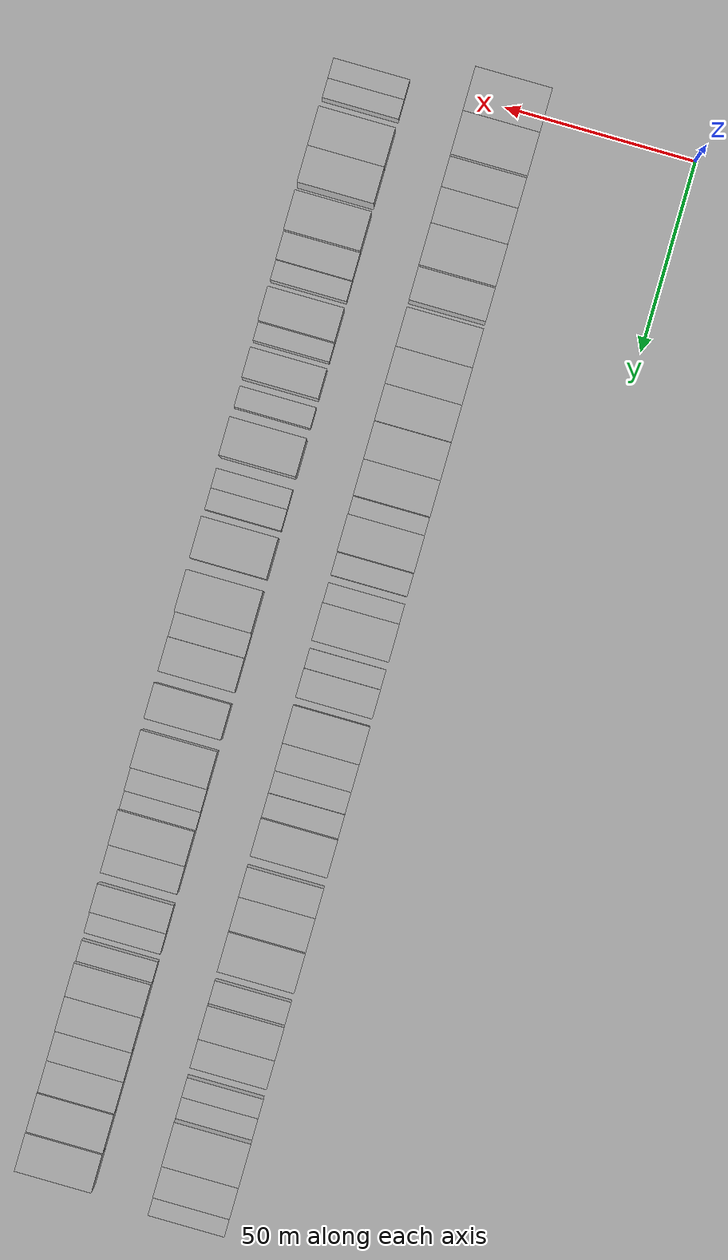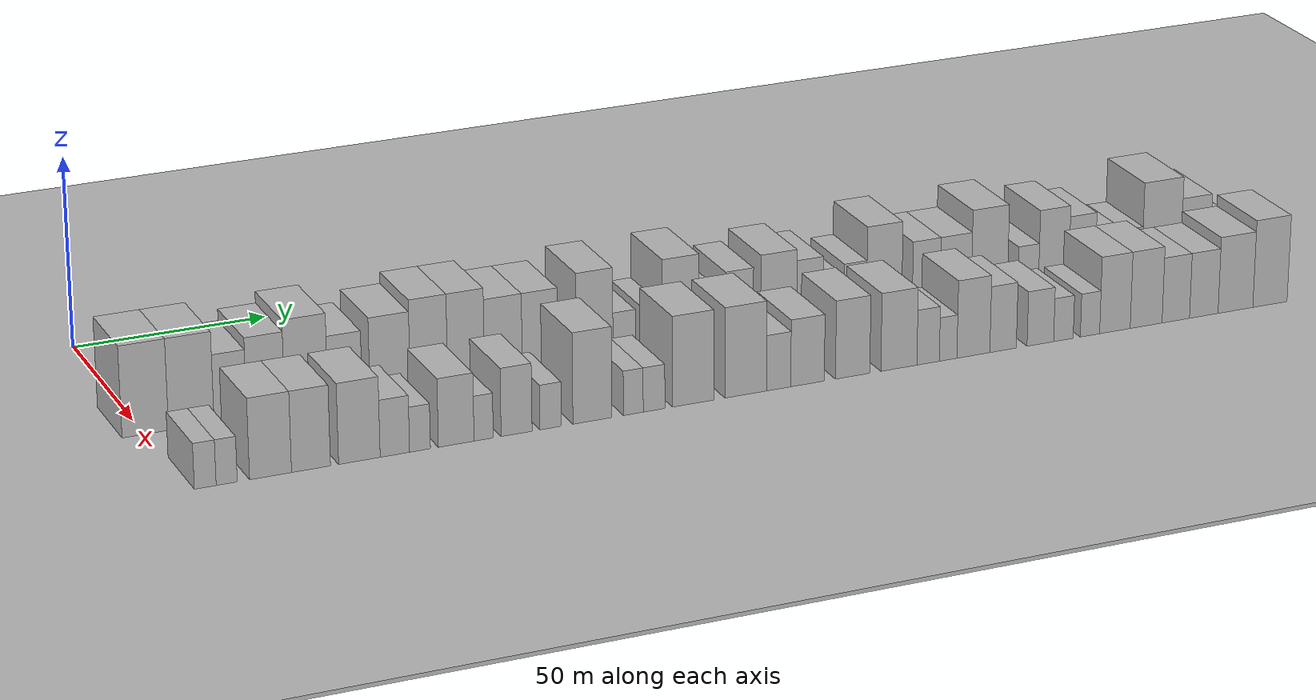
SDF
<sdf version="1.6">
 <world name="default">
  <include><name>ground_plane_1</name><uri>model://HANNAS_ground_plane</uri></include>
  <include>
   <name>ground_plane_2</name>
   <uri>model://HANNAS_ground_plane</uri>
   <pose>100 0 0  0 0 0</pose>
  </include>
  <model name="building_32">
   <static>1</static>
   <pose>50.0000 -0.0336 0 0.000000 0.000000 0.000000</pose>
   <link name="link">
    <pose>0 0 12.00 0 0 0</pose>
    <collision name="collision"><geometry><box><size>20.0000 11.4835 24.0000</size></box></geometry></collision>
    <visual name="visual">
     <cast_shadows>0</cast_shadows>
     <geometry><box><size>20.0000 11.4835 24.0000</size></box></geometry>
     <material>
      <script>
       <uri>model://HANNAS_wall/materials/scripts</uri>
       <uri>model://HANNAS_wall/materials/textures</uri>
       <name>vrc/HANNAS_wall</name>
      </script>
     </material>
    </visual>
   </link>
  </model>
  <model name="building_33">
   <static>1</static>
   <pose>50.0000 11.3672 0 0.000000 0.000000 0.000000</pose>
   <link name="link">
    <pose>0 0 12.00 0 0 0</pose>
    <collision name="collision"><geometry><box><size>20.0000 11.3181 24.0000</size></box></geometry></collision>
    <visual name="visual">
     <cast_shadows>0</cast_shadows>
     <geometry><box><size>20.0000 11.3181 24.0000</size></box></geometry>
     <material>
      <script>
       <uri>model://HANNAS_wall/materials/scripts</uri>
       <uri>model://HANNAS_wall/materials/textures</uri>
       <name>vrc/HANNAS_wall</name>
      </script>
     </material>
    </visual>
   </link>
  </model>
  <model name="building_34">
   <static>1</static>
   <pose>50.0000 21.1201 0 0.000000 0.000000 0.000000</pose>
   <link name="link">
    <pose>0 0 9.00 0 0 0</pose>
    <collision name="collision"><geometry><box><size>20.0000 8.1878 18.0000</size></box></geometry></collision>
    <visual name="visual">
     <cast_shadows>0</cast_shadows>
     <geometry><box><size>20.0000 8.1878 18.0000</size></box></geometry>
     <material>
      <script>
       <uri>model://HANNAS_wall/materials/scripts</uri>
       <uri>model://HANNAS_wall/materials/textures</uri>
       <name>vrc/HANNAS_wall</name>
      </script>
     </material>
    </visual>
   </link>
  </model>
  <model name="building_35">
   <static>1</static>
   <pose>50.0000 30.0102 0 0.000000 0.000000 0.000000</pose>
   <link name="link">
    <pose>0 0 10.50 0 0 0</pose>
    <collision name="collision"><geometry><box><size>20.0000 9.5924 21.0000</size></box></geometry></collision>
    <visual name="visual">
     <cast_shadows>0</cast_shadows>
     <geometry><box><size>20.0000 9.5924 21.0000</size></box></geometry>
     <material>
      <script>
       <uri>model://HANNAS_wall/materials/scripts</uri>
       <uri>model://HANNAS_wall/materials/textures</uri>
       <name>vrc/HANNAS_wall</name>
      </script>
     </material>
    </visual>
   </link>
  </model>
  <model name="building_36">
   <static>1</static>
   <pose>50.0000 40.2652 0 0.000000 0.000000 0.000000</pose>
   <link name="link">
    <pose>0 0 12.00 0 0 0</pose>
    <collision name="collision"><geometry><box><size>20.0000 10.9175 24.0000</size></box></geometry></collision>
    <visual name="visual">
     <cast_shadows>0</cast_shadows>
     <geometry><box><size>20.0000 10.9175 24.0000</size></box></geometry>
     <material>
      <script>
       <uri>model://HANNAS_wall/materials/scripts</uri>
       <uri>model://HANNAS_wall/materials/textures</uri>
       <name>vrc/HANNAS_wall</name>
      </script>
     </material>
    </visual>
   </link>
  </model>
  <model name="building_37">
   <static>1</static>
   <pose>50.0000 50.0913 0 0.000000 0.000000 0.000000</pose>
   <link name="link">
    <pose>0 0 9.00 0 0 0</pose>
    <collision name="collision"><geometry><box><size>20.0000 8.7346 18.0000</size></box></geometry></collision>
    <visual name="visual">
     <cast_shadows>0</cast_shadows>
     <geometry><box><size>20.0000 8.7346 18.0000</size></box></geometry>
     <material>
      <script>
       <uri>model://HANNAS_wall/materials/scripts</uri>
       <uri>model://HANNAS_wall/materials/textures</uri>
       <name>vrc/HANNAS_wall</name>
      </script>
     </material>
    </visual>
   </link>
  </model>
  <model name="building_38">
   <static>1</static>
   <pose>50.0000 61.6384 0 0.000000 0.000000 0.000000</pose>
   <link name="link">
    <pose>0 0 10.50 0 0 0</pose>
    <collision name="collision"><geometry><box><size>20.0000 10.3596 21.0000</size></box></geometry></collision>
    <visual name="visual">
     <cast_shadows>0</cast_shadows>
     <geometry><box><size>20.0000 10.3596 21.0000</size></box></geometry>
     <material>
      <script>
       <uri>model://HANNAS_wall/materials/scripts</uri>
       <uri>model://HANNAS_wall/materials/textures</uri>
       <name>vrc/HANNAS_wall</name>
      </script>
     </material>
    </visual>
   </link>
  </model>
  <model name="building_39">
   <static>1</static>
   <pose>50.0000 71.6569 0 0.000000 0.000000 0.000000</pose>
   <link name="link">
    <pose>0 0 12.00 0 0 0</pose>
    <collision name="collision"><geometry><box><size>20.0000 9.6773 24.0000</size></box></geometry></collision>
    <visual name="visual">
     <cast_shadows>0</cast_shadows>
     <geometry><box><size>20.0000 9.6773 24.0000</size></box></geometry>
     <material>
      <script>
       <uri>model://HANNAS_wall/materials/scripts</uri>
       <uri>model://HANNAS_wall/materials/textures</uri>
       <name>vrc/HANNAS_wall</name>
      </script>
     </material>
    </visual>
   </link>
  </model>
  <model name="building_40">
   <static>1</static>
   <pose>50.0000 81.2991 0 0.000000 0.000000 0.000000</pose>
   <link name="link">
    <pose>0 0 12.00 0 0 0</pose>
    <collision name="collision"><geometry><box><size>20.0000 9.6071 24.0000</size></box></geometry></collision>
    <visual name="visual">
     <cast_shadows>0</cast_shadows>
     <geometry><box><size>20.0000 9.6071 24.0000</size></box></geometry>
     <material>
      <script>
       <uri>model://HANNAS_wall/materials/scripts</uri>
       <uri>model://HANNAS_wall/materials/textures</uri>
       <name>vrc/HANNAS_wall</name>
      </script>
     </material>
    </visual>
   </link>
  </model>
  <model name="building_41">
   <static>1</static>
   <pose>50.0000 91.0452 0 0.000000 0.000000 0.000000</pose>
   <link name="link">
    <pose>0 0 10.50 0 0 0</pose>
    <collision name="collision"><geometry><box><size>20.0000 9.8851 21.0000</size></box></geometry></collision>
    <visual name="visual">
     <cast_shadows>0</cast_shadows>
     <geometry><box><size>20.0000 9.8851 21.0000</size></box></geometry>
     <material>
      <script>
       <uri>model://HANNAS_wall/materials/scripts</uri>
       <uri>model://HANNAS_wall/materials/textures</uri>
       <name>vrc/HANNAS_wall</name>
      </script>
     </material>
    </visual>
   </link>
  </model>
  <model name="building_42">
   <static>1</static>
   <pose>50.0000 100.6910 0 0.000000 0.000000 0.000000</pose>
   <link name="link">
    <pose>0 0 10.50 0 0 0</pose>
    <collision name="collision"><geometry><box><size>20.0000 9.4066 21.0000</size></box></geometry></collision>
    <visual name="visual">
     <cast_shadows>0</cast_shadows>
     <geometry><box><size>20.0000 9.4066 21.0000</size></box></geometry>
     <material>
      <script>
       <uri>model://HANNAS_wall/materials/scripts</uri>
       <uri>model://HANNAS_wall/materials/textures</uri>
       <name>vrc/HANNAS_wall</name>
      </script>
     </material>
    </visual>
   </link>
  </model>
  <model name="building_43">
   <static>1</static>
   <pose>50.0000 107.8658 0 0.000000 0.000000 0.000000</pose>
   <link name="link">
    <pose>0 0 6.00 0 0 0</pose>
    <collision name="collision"><geometry><box><size>20.0000 4.9430 12.0000</size></box></geometry></collision>
    <visual name="visual">
     <cast_shadows>0</cast_shadows>
     <geometry><box><size>20.0000 4.9430 12.0000</size></box></geometry>
     <material>
      <script>
       <uri>model://HANNAS_wall/materials/scripts</uri>
       <uri>model://HANNAS_wall/materials/textures</uri>
       <name>vrc/HANNAS_wall</name>
      </script>
     </material>
    </visual>
   </link>
  </model>
  <model name="building_44">
   <static>1</static>
   <pose>50.0000 115.1878 0 0.000000 0.000000 0.000000</pose>
   <link name="link">
    <pose>0 0 12.00 0 0 0</pose>
    <collision name="collision"><geometry><box><size>20.0000 9.7011 24.0000</size></box></geometry></collision>
    <visual name="visual">
     <cast_shadows>0</cast_shadows>
     <geometry><box><size>20.0000 9.7011 24.0000</size></box></geometry>
     <material>
      <script>
       <uri>model://HANNAS_wall/materials/scripts</uri>
       <uri>model://HANNAS_wall/materials/textures</uri>
       <name>vrc/HANNAS_wall</name>
      </script>
     </material>
    </visual>
   </link>
  </model>
  <model name="building_45">
   <static>1</static>
   <pose>50.0000 123.0309 0 0.000000 0.000000 0.000000</pose>
   <link name="link">
    <pose>0 0 6.00 0 0 0</pose>
    <collision name="collision"><geometry><box><size>20.0000 5.9852 12.0000</size></box></geometry></collision>
    <visual name="visual">
     <cast_shadows>0</cast_shadows>
     <geometry><box><size>20.0000 5.9852 12.0000</size></box></geometry>
     <material>
      <script>
       <uri>model://HANNAS_wall/materials/scripts</uri>
       <uri>model://HANNAS_wall/materials/textures</uri>
       <name>vrc/HANNAS_wall</name>
      </script>
     </material>
    </visual>
   </link>
  </model>
  <model name="building_46">
   <static>1</static>
   <pose>50.0000 130.6669 0 0.000000 0.000000 0.000000</pose>
   <link name="link">
    <pose>0 0 6.00 0 0 0</pose>
    <collision name="collision"><geometry><box><size>20.0000 5.2868 12.0000</size></box></geometry></collision>
    <visual name="visual">
     <cast_shadows>0</cast_shadows>
     <geometry><box><size>20.0000 5.2868 12.0000</size></box></geometry>
     <material>
      <script>
       <uri>model://HANNAS_wall/materials/scripts</uri>
       <uri>model://HANNAS_wall/materials/textures</uri>
       <name>vrc/HANNAS_wall</name>
      </script>
     </material>
    </visual>
   </link>
  </model>
  <model name="building_47">
   <static>1</static>
   <pose>50.0000 138.2354 0 0.000000 0.000000 0.000000</pose>
   <link name="link">
    <pose>0 0 12.00 0 0 0</pose>
    <collision name="collision"><geometry><box><size>20.0000 9.8501 24.0000</size></box></geometry></collision>
    <visual name="visual">
     <cast_shadows>0</cast_shadows>
     <geometry><box><size>20.0000 9.8501 24.0000</size></box></geometry>
     <material>
      <script>
       <uri>model://HANNAS_wall/materials/scripts</uri>
       <uri>model://HANNAS_wall/materials/textures</uri>
       <name>vrc/HANNAS_wall</name>
      </script>
     </material>
    </visual>
   </link>
  </model>
  <model name="building_48">
   <static>1</static>
   <pose>50.0000 147.7695 0 0.000000 0.000000 0.000000</pose>
   <link name="link">
    <pose>0 0 6.00 0 0 0</pose>
    <collision name="collision"><geometry><box><size>20.0000 5.2181 12.0000</size></box></geometry></collision>
    <visual name="visual">
     <cast_shadows>0</cast_shadows>
     <geometry><box><size>20.0000 5.2181 12.0000</size></box></geometry>
     <material>
      <script>
       <uri>model://HANNAS_wall/materials/scripts</uri>
       <uri>model://HANNAS_wall/materials/textures</uri>
       <name>vrc/HANNAS_wall</name>
      </script>
     </material>
    </visual>
   </link>
  </model>
  <model name="building_49">
   <static>1</static>
   <pose>50.0000 154.1735 0 0.000000 0.000000 0.000000</pose>
   <link name="link">
    <pose>0 0 9.00 0 0 0</pose>
    <collision name="collision"><geometry><box><size>20.0000 7.5898 18.0000</size></box></geometry></collision>
    <visual name="visual">
     <cast_shadows>0</cast_shadows>
     <geometry><box><size>20.0000 7.5898 18.0000</size></box></geometry>
     <material>
      <script>
       <uri>model://HANNAS_wall/materials/scripts</uri>
       <uri>model://HANNAS_wall/materials/textures</uri>
       <name>vrc/HANNAS_wall</name>
      </script>
     </material>
    </visual>
   </link>
  </model>
  <model name="building_50">
   <static>1</static>
   <pose>50.0000 164.9197 0 0.000000 0.000000 0.000000</pose>
   <link name="link">
    <pose>0 0 10.50 0 0 0</pose>
    <collision name="collision"><geometry><box><size>20.0000 9.9027 21.0000</size></box></geometry></collision>
    <visual name="visual">
     <cast_shadows>0</cast_shadows>
     <geometry><box><size>20.0000 9.9027 21.0000</size></box></geometry>
     <material>
      <script>
       <uri>model://HANNAS_wall/materials/scripts</uri>
       <uri>model://HANNAS_wall/materials/textures</uri>
       <name>vrc/HANNAS_wall</name>
      </script>
     </material>
    </visual>
   </link>
  </model>
  <model name="building_51">
   <static>1</static>
   <pose>50.0000 173.4801 0 0.000000 0.000000 0.000000</pose>
   <link name="link">
    <pose>0 0 9.00 0 0 0</pose>
    <collision name="collision"><geometry><box><size>20.0000 7.2180 18.0000</size></box></geometry></collision>
    <visual name="visual">
     <cast_shadows>0</cast_shadows>
     <geometry><box><size>20.0000 7.2180 18.0000</size></box></geometry>
     <material>
      <script>
       <uri>model://HANNAS_wall/materials/scripts</uri>
       <uri>model://HANNAS_wall/materials/textures</uri>
       <name>vrc/HANNAS_wall</name>
      </script>
     </material>
    </visual>
   </link>
  </model>
  <model name="building_52">
   <static>1</static>
   <pose>50.0000 180.0449 0 0.000000 0.000000 0.000000</pose>
   <link name="link">
    <pose>0 0 6.00 0 0 0</pose>
    <collision name="collision"><geometry><box><size>20.0000 5.9116 12.0000</size></box></geometry></collision>
    <visual name="visual">
     <cast_shadows>0</cast_shadows>
     <geometry><box><size>20.0000 5.9116 12.0000</size></box></geometry>
     <material>
      <script>
       <uri>model://HANNAS_wall/materials/scripts</uri>
       <uri>model://HANNAS_wall/materials/textures</uri>
       <name>vrc/HANNAS_wall</name>
      </script>
     </material>
    </visual>
   </link>
  </model>
  <model name="building_53">
   <static>1</static>
   <pose>50.0000 186.1370 0 0.000000 0.000000 0.000000</pose>
   <link name="link">
    <pose>0 0 7.50 0 0 0</pose>
    <collision name="collision"><geometry><box><size>20.0000 6.2726 15.0000</size></box></geometry></collision>
    <visual name="visual">
     <cast_shadows>0</cast_shadows>
     <geometry><box><size>20.0000 6.2726 15.0000</size></box></geometry>
     <material>
      <script>
       <uri>model://HANNAS_wall/materials/scripts</uri>
       <uri>model://HANNAS_wall/materials/textures</uri>
       <name>vrc/HANNAS_wall</name>
      </script>
     </material>
    </visual>
   </link>
  </model>
  <model name="building_54">
   <static>1</static>
   <pose>50.0000 194.2000 0 0.000000 0.000000 0.000000</pose>
   <link name="link">
    <pose>0 0 12.00 0 0 0</pose>
    <collision name="collision"><geometry><box><size>20.0000 9.8535 24.0000</size></box></geometry></collision>
    <visual name="visual">
     <cast_shadows>0</cast_shadows>
     <geometry><box><size>20.0000 9.8535 24.0000</size></box></geometry>
     <material>
      <script>
       <uri>model://HANNAS_wall/materials/scripts</uri>
       <uri>model://HANNAS_wall/materials/textures</uri>
       <name>vrc/HANNAS_wall</name>
      </script>
     </material>
    </visual>
   </link>
  </model>
  <model name="building_55">
   <static>1</static>
   <pose>50.0000 206.0521 0 0.000000 0.000000 0.000000</pose>
   <link name="link">
    <pose>0 0 9.00 0 0 0</pose>
    <collision name="collision"><geometry><box><size>20.0000 7.8506 18.0000</size></box></geometry></collision>
    <visual name="visual">
     <cast_shadows>0</cast_shadows>
     <geometry><box><size>20.0000 7.8506 18.0000</size></box></geometry>
     <material>
      <script>
       <uri>model://HANNAS_wall/materials/scripts</uri>
       <uri>model://HANNAS_wall/materials/textures</uri>
       <name>vrc/HANNAS_wall</name>
      </script>
     </material>
    </visual>
   </link>
  </model>
  <model name="building_56">
   <static>1</static>
   <pose>50.0000 214.3937 0 0.000000 0.000000 0.000000</pose>
   <link name="link">
    <pose>0 0 9.00 0 0 0</pose>
    <collision name="collision"><geometry><box><size>20.0000 8.8326 18.0000</size></box></geometry></collision>
    <visual name="visual">
     <cast_shadows>0</cast_shadows>
     <geometry><box><size>20.0000 8.8326 18.0000</size></box></geometry>
     <material>
      <script>
       <uri>model://HANNAS_wall/materials/scripts</uri>
       <uri>model://HANNAS_wall/materials/textures</uri>
       <name>vrc/HANNAS_wall</name>
      </script>
     </material>
    </visual>
   </link>
  </model>
  <model name="building_57">
   <static>1</static>
   <pose>50.0000 223.9741 0 0.000000 0.000000 0.000000</pose>
   <link name="link">
    <pose>0 0 12.00 0 0 0</pose>
    <collision name="collision"><geometry><box><size>20.0000 10.3283 24.0000</size></box></geometry></collision>
    <visual name="visual">
     <cast_shadows>0</cast_shadows>
     <geometry><box><size>20.0000 10.3283 24.0000</size></box></geometry>
     <material>
      <script>
       <uri>model://HANNAS_wall/materials/scripts</uri>
       <uri>model://HANNAS_wall/materials/textures</uri>
       <name>vrc/HANNAS_wall</name>
      </script>
     </material>
    </visual>
   </link>
  </model>
  <model name="building_58">
   <static>1</static>
   <pose>50.0000 235.1198 0 0.000000 0.000000 0.000000</pose>
   <link name="link">
    <pose>0 0 6.00 0 0 0</pose>
    <collision name="collision"><geometry><box><size>20.0000 5.9631 12.0000</size></box></geometry></collision>
    <visual name="visual">
     <cast_shadows>0</cast_shadows>
     <geometry><box><size>20.0000 5.9631 12.0000</size></box></geometry>
     <material>
      <script>
       <uri>model://HANNAS_wall/materials/scripts</uri>
       <uri>model://HANNAS_wall/materials/textures</uri>
       <name>vrc/HANNAS_wall</name>
      </script>
     </material>
    </visual>
   </link>
  </model>
  <model name="building_59">
   <static>1</static>
   <pose>50.0000 242.4629 0 0.000000 0.000000 0.000000</pose>
   <link name="link">
    <pose>0 0 10.50 0 0 0</pose>
    <collision name="collision"><geometry><box><size>20.0000 8.7232 21.0000</size></box></geometry></collision>
    <visual name="visual">
     <cast_shadows>0</cast_shadows>
     <geometry><box><size>20.0000 8.7232 21.0000</size></box></geometry>
     <material>
      <script>
       <uri>model://HANNAS_wall/materials/scripts</uri>
       <uri>model://HANNAS_wall/materials/textures</uri>
       <name>vrc/HANNAS_wall</name>
      </script>
     </material>
    </visual>
   </link>
  </model>
  <model name="building_60">
   <static>1</static>
   <pose>50.0000 250.6512 0 0.000000 0.000000 0.000000</pose>
   <link name="link">
    <pose>0 0 9.00 0 0 0</pose>
    <collision name="collision"><geometry><box><size>20.0000 7.6533 18.0000</size></box></geometry></collision>
    <visual name="visual">
     <cast_shadows>0</cast_shadows>
     <geometry><box><size>20.0000 7.6533 18.0000</size></box></geometry>
     <material>
      <script>
       <uri>model://HANNAS_wall/materials/scripts</uri>
       <uri>model://HANNAS_wall/materials/textures</uri>
       <name>vrc/HANNAS_wall</name>
      </script>
     </material>
    </visual>
   </link>
  </model>
  <model name="building_61">
   <static>1</static>
   <pose>50.0000 260.0335 0 0.000000 0.000000 0.000000</pose>
   <link name="link">
    <pose>0 0 6.00 0 0 0</pose>
    <collision name="collision"><geometry><box><size>20.0000 5.1113 12.0000</size></box></geometry></collision>
    <visual name="visual">
     <cast_shadows>0</cast_shadows>
     <geometry><box><size>20.0000 5.1113 12.0000</size></box></geometry>
     <material>
      <script>
       <uri>model://HANNAS_wall/materials/scripts</uri>
       <uri>model://HANNAS_wall/materials/textures</uri>
       <name>vrc/HANNAS_wall</name>
      </script>
     </material>
    </visual>
   </link>
  </model>
  <model name="building_62">
   <static>1</static>
   <pose>50.0000 265.3743 0 0.000000 0.000000 0.000000</pose>
   <link name="link">
    <pose>0 0 6.00 0 0 0</pose>
    <collision name="collision"><geometry><box><size>20.0000 5.5704 12.0000</size></box></geometry></collision>
    <visual name="visual">
     <cast_shadows>0</cast_shadows>
     <geometry><box><size>20.0000 5.5704 12.0000</size></box></geometry>
     <material>
      <script>
       <uri>model://HANNAS_wall/materials/scripts</uri>
       <uri>model://HANNAS_wall/materials/textures</uri>
       <name>vrc/HANNAS_wall</name>
      </script>
     </material>
    </visual>
   </link>
  </model>
  <model name="building_63">
   <static>1</static>
   <pose>50.0000 273.8902 0 0.000000 0.000000 0.000000</pose>
   <link name="link">
    <pose>0 0 12.00 0 0 0</pose>
    <collision name="collision"><geometry><box><size>20.0000 11.4613 24.0000</size></box></geometry></collision>
    <visual name="visual">
     <cast_shadows>0</cast_shadows>
     <geometry><box><size>20.0000 11.4613 24.0000</size></box></geometry>
     <material>
      <script>
       <uri>model://HANNAS_wall/materials/scripts</uri>
       <uri>model://HANNAS_wall/materials/textures</uri>
       <name>vrc/HANNAS_wall</name>
      </script>
     </material>
    </visual>
   </link>
  </model>
  <model name="building_64">
   <static>1</static>
   <pose>50.0000 283.9625 0 0.000000 0.000000 0.000000</pose>
   <link name="link">
    <pose>0 0 9.00 0 0 0</pose>
    <collision name="collision"><geometry><box><size>20.0000 8.6834 18.0000</size></box></geometry></collision>
    <visual name="visual">
     <cast_shadows>0</cast_shadows>
     <geometry><box><size>20.0000 8.6834 18.0000</size></box></geometry>
     <material>
      <script>
       <uri>model://HANNAS_wall/materials/scripts</uri>
       <uri>model://HANNAS_wall/materials/textures</uri>
       <name>vrc/HANNAS_wall</name>
      </script>
     </material>
    </visual>
   </link>
  </model>
  <model name="building_65">
   <static>1</static>
   <pose>50.0000 290.9060 0 0.000000 0.000000 0.000000</pose>
   <link name="link">
    <pose>0 0 6.00 0 0 0</pose>
    <collision name="collision"><geometry><box><size>20.0000 5.2034 12.0000</size></box></geometry></collision>
    <visual name="visual">
     <cast_shadows>0</cast_shadows>
     <geometry><box><size>20.0000 5.2034 12.0000</size></box></geometry>
     <material>
      <script>
       <uri>model://HANNAS_wall/materials/scripts</uri>
       <uri>model://HANNAS_wall/materials/textures</uri>
       <name>vrc/HANNAS_wall</name>
      </script>
     </material>
    </visual>
   </link>
  </model>
  <model name="building_102">
   <static>1</static>
   <pose>85.0000 3.4648 0 0.000000 0.000000 0.000000</pose>
   <link name="link">
    <pose>0 0 6.00 0 0 0</pose>
    <collision name="collision"><geometry><box><size>20.0000 5.2595 12.0000</size></box></geometry></collision>
    <visual name="visual">
     <cast_shadows>0</cast_shadows>
     <geometry><box><size>20.0000 5.2595 12.0000</size></box></geometry>
     <material>
      <script>
       <uri>model://HANNAS_wall/materials/scripts</uri>
       <uri>model://HANNAS_wall/materials/textures</uri>
       <name>vrc/HANNAS_wall</name>
      </script>
     </material>
    </visual>
   </link>
  </model>
  <model name="building_103">
   <static>1</static>
   <pose>85.0000 8.6516 0 0.000000 0.000000 0.000000</pose>
   <link name="link">
    <pose>0 0 6.00 0 0 0</pose>
    <collision name="collision"><geometry><box><size>20.0000 5.1143 12.0000</size></box></geometry></collision>
    <visual name="visual">
     <cast_shadows>0</cast_shadows>
     <geometry><box><size>20.0000 5.1143 12.0000</size></box></geometry>
     <material>
      <script>
       <uri>model://HANNAS_wall/materials/scripts</uri>
       <uri>model://HANNAS_wall/materials/textures</uri>
       <name>vrc/HANNAS_wall</name>
      </script>
     </material>
    </visual>
   </link>
  </model>
  <model name="building_104">
   <static>1</static>
   <pose>85.0000 19.3255 0 0.000000 0.000000 0.000000</pose>
   <link name="link">
    <pose>0 0 10.50 0 0 0</pose>
    <collision name="collision"><geometry><box><size>20.0000 10.2333 21.0000</size></box></geometry></collision>
    <visual name="visual">
     <cast_shadows>0</cast_shadows>
     <geometry><box><size>20.0000 10.2333 21.0000</size></box></geometry>
     <material>
      <script>
       <uri>model://HANNAS_wall/materials/scripts</uri>
       <uri>model://HANNAS_wall/materials/textures</uri>
       <name>vrc/HANNAS_wall</name>
      </script>
     </material>
    </visual>
   </link>
  </model>
  <model name="building_105">
   <static>1</static>
   <pose>85.0000 29.2290 0 0.000000 0.000000 0.000000</pose>
   <link name="link">
    <pose>0 0 10.50 0 0 0</pose>
    <collision name="collision"><geometry><box><size>20.0000 9.5737 21.0000</size></box></geometry></collision>
    <visual name="visual">
     <cast_shadows>0</cast_shadows>
     <geometry><box><size>20.0000 9.5737 21.0000</size></box></geometry>
     <material>
      <script>
       <uri>model://HANNAS_wall/materials/scripts</uri>
       <uri>model://HANNAS_wall/materials/textures</uri>
       <name>vrc/HANNAS_wall</name>
      </script>
     </material>
    </visual>
   </link>
  </model>
  <model name="building_106">
   <static>1</static>
   <pose>85.0000 41.1693 0 0.000000 0.000000 0.000000</pose>
   <link name="link">
    <pose>0 0 10.50 0 0 0</pose>
    <collision name="collision"><geometry><box><size>20.0000 10.3070 21.0000</size></box></geometry></collision>
    <visual name="visual">
     <cast_shadows>0</cast_shadows>
     <geometry><box><size>20.0000 10.3070 21.0000</size></box></geometry>
     <material>
      <script>
       <uri>model://HANNAS_wall/materials/scripts</uri>
       <uri>model://HANNAS_wall/materials/textures</uri>
       <name>vrc/HANNAS_wall</name>
      </script>
     </material>
    </visual>
   </link>
  </model>
  <model name="building_107">
   <static>1</static>
   <pose>85.0000 49.9893 0 0.000000 0.000000 0.000000</pose>
   <link name="link">
    <pose>0 0 7.50 0 0 0</pose>
    <collision name="collision"><geometry><box><size>20.0000 7.3329 15.0000</size></box></geometry></collision>
    <visual name="visual">
     <cast_shadows>0</cast_shadows>
     <geometry><box><size>20.0000 7.3329 15.0000</size></box></geometry>
     <material>
      <script>
       <uri>model://HANNAS_wall/materials/scripts</uri>
       <uri>model://HANNAS_wall/materials/textures</uri>
       <name>vrc/HANNAS_wall</name>
      </script>
     </material>
    </visual>
   </link>
  </model>
  <model name="building_108">
   <static>1</static>
   <pose>85.0000 56.2641 0 0.000000 0.000000 0.000000</pose>
   <link name="link">
    <pose>0 0 6.00 0 0 0</pose>
    <collision name="collision"><geometry><box><size>20.0000 5.2167 12.0000</size></box></geometry></collision>
    <visual name="visual">
     <cast_shadows>0</cast_shadows>
     <geometry><box><size>20.0000 5.2167 12.0000</size></box></geometry>
     <material>
      <script>
       <uri>model://HANNAS_wall/materials/scripts</uri>
       <uri>model://HANNAS_wall/materials/textures</uri>
       <name>vrc/HANNAS_wall</name>
      </script>
     </material>
    </visual>
   </link>
  </model>
  <model name="building_109">
   <static>1</static>
   <pose>85.0000 65.3634 0 0.000000 0.000000 0.000000</pose>
   <link name="link">
    <pose>0 0 9.00 0 0 0</pose>
    <collision name="collision"><geometry><box><size>20.0000 8.9821 18.0000</size></box></geometry></collision>
    <visual name="visual">
     <cast_shadows>0</cast_shadows>
     <geometry><box><size>20.0000 8.9821 18.0000</size></box></geometry>
     <material>
      <script>
       <uri>model://HANNAS_wall/materials/scripts</uri>
       <uri>model://HANNAS_wall/materials/textures</uri>
       <name>vrc/HANNAS_wall</name>
      </script>
     </material>
    </visual>
   </link>
  </model>
  <model name="building_110">
   <static>1</static>
   <pose>85.0000 72.2839 0 0.000000 0.000000 0.000000</pose>
   <link name="link">
    <pose>0 0 6.00 0 0 0</pose>
    <collision name="collision"><geometry><box><size>20.0000 4.8587 12.0000</size></box></geometry></collision>
    <visual name="visual">
     <cast_shadows>0</cast_shadows>
     <geometry><box><size>20.0000 4.8587 12.0000</size></box></geometry>
     <material>
      <script>
       <uri>model://HANNAS_wall/materials/scripts</uri>
       <uri>model://HANNAS_wall/materials/textures</uri>
       <name>vrc/HANNAS_wall</name>
      </script>
     </material>
    </visual>
   </link>
  </model>
  <model name="building_111">
   <static>1</static>
   <pose>85.0000 80.6557 0 0.000000 0.000000 0.000000</pose>
   <link name="link">
    <pose>0 0 9.00 0 0 0</pose>
    <collision name="collision"><geometry><box><size>20.0000 7.8850 18.0000</size></box></geometry></collision>
    <visual name="visual">
     <cast_shadows>0</cast_shadows>
     <geometry><box><size>20.0000 7.8850 18.0000</size></box></geometry>
     <material>
      <script>
       <uri>model://HANNAS_wall/materials/scripts</uri>
       <uri>model://HANNAS_wall/materials/textures</uri>
       <name>vrc/HANNAS_wall</name>
      </script>
     </material>
    </visual>
   </link>
  </model>
  <model name="building_112">
   <static>1</static>
   <pose>85.0000 89.3356 0 0.000000 0.000000 0.000000</pose>
   <link name="link">
    <pose>0 0 6.00 0 0 0</pose>
    <collision name="collision"><geometry><box><size>20.0000 5.4748 12.0000</size></box></geometry></collision>
    <visual name="visual">
     <cast_shadows>0</cast_shadows>
     <geometry><box><size>20.0000 5.4748 12.0000</size></box></geometry>
     <material>
      <script>
       <uri>model://HANNAS_wall/materials/scripts</uri>
       <uri>model://HANNAS_wall/materials/textures</uri>
       <name>vrc/HANNAS_wall</name>
      </script>
     </material>
    </visual>
   </link>
  </model>
  <model name="building_113">
   <static>1</static>
   <pose>85.0000 100.0873 0 0.000000 0.000000 0.000000</pose>
   <link name="link">
    <pose>0 0 12.00 0 0 0</pose>
    <collision name="collision"><geometry><box><size>20.0000 10.0287 24.0000</size></box></geometry></collision>
    <visual name="visual">
     <cast_shadows>0</cast_shadows>
     <geometry><box><size>20.0000 10.0287 24.0000</size></box></geometry>
     <material>
      <script>
       <uri>model://HANNAS_wall/materials/scripts</uri>
       <uri>model://HANNAS_wall/materials/textures</uri>
       <name>vrc/HANNAS_wall</name>
      </script>
     </material>
    </visual>
   </link>
  </model>
  <model name="building_114">
   <static>1</static>
   <pose>85.0000 110.6780 0 0.000000 0.000000 0.000000</pose>
   <link name="link">
    <pose>0 0 6.00 0 0 0</pose>
    <collision name="collision"><geometry><box><size>20.0000 5.1525 12.0000</size></box></geometry></collision>
    <visual name="visual">
     <cast_shadows>0</cast_shadows>
     <geometry><box><size>20.0000 5.1525 12.0000</size></box></geometry>
     <material>
      <script>
       <uri>model://HANNAS_wall/materials/scripts</uri>
       <uri>model://HANNAS_wall/materials/textures</uri>
       <name>vrc/HANNAS_wall</name>
      </script>
     </material>
    </visual>
   </link>
  </model>
  <model name="building_115">
   <static>1</static>
   <pose>85.0000 116.0721 0 0.000000 0.000000 0.000000</pose>
   <link name="link">
    <pose>0 0 6.00 0 0 0</pose>
    <collision name="collision"><geometry><box><size>20.0000 5.6358 12.0000</size></box></geometry></collision>
    <visual name="visual">
     <cast_shadows>0</cast_shadows>
     <geometry><box><size>20.0000 5.6358 12.0000</size></box></geometry>
     <material>
      <script>
       <uri>model://HANNAS_wall/materials/scripts</uri>
       <uri>model://HANNAS_wall/materials/textures</uri>
       <name>vrc/HANNAS_wall</name>
      </script>
     </material>
    </visual>
   </link>
  </model>
  <model name="building_116">
   <static>1</static>
   <pose>85.0000 126.2900 0 0.000000 0.000000 0.000000</pose>
   <link name="link">
    <pose>0 0 12.00 0 0 0</pose>
    <collision name="collision"><geometry><box><size>20.0000 10.8002 24.0000</size></box></geometry></collision>
    <visual name="visual">
     <cast_shadows>0</cast_shadows>
     <geometry><box><size>20.0000 10.8002 24.0000</size></box></geometry>
     <material>
      <script>
       <uri>model://HANNAS_wall/materials/scripts</uri>
       <uri>model://HANNAS_wall/materials/textures</uri>
       <name>vrc/HANNAS_wall</name>
      </script>
     </material>
    </visual>
   </link>
  </model>
  <model name="building_117">
   <static>1</static>
   <pose>85.0000 140.1771 0 0.000000 0.000000 0.000000</pose>
   <link name="link">
    <pose>0 0 12.00 0 0 0</pose>
    <collision name="collision"><geometry><box><size>20.0000 10.9739 24.0000</size></box></geometry></collision>
    <visual name="visual">
     <cast_shadows>0</cast_shadows>
     <geometry><box><size>20.0000 10.9739 24.0000</size></box></geometry>
     <material>
      <script>
       <uri>model://HANNAS_wall/materials/scripts</uri>
       <uri>model://HANNAS_wall/materials/textures</uri>
       <name>vrc/HANNAS_wall</name>
      </script>
     </material>
    </visual>
   </link>
  </model>
  <model name="building_118">
   <static>1</static>
   <pose>85.0000 148.9089 0 0.000000 0.000000 0.000000</pose>
   <link name="link">
    <pose>0 0 7.50 0 0 0</pose>
    <collision name="collision"><geometry><box><size>20.0000 6.4898 15.0000</size></box></geometry></collision>
    <visual name="visual">
     <cast_shadows>0</cast_shadows>
     <geometry><box><size>20.0000 6.4898 15.0000</size></box></geometry>
     <material>
      <script>
       <uri>model://HANNAS_wall/materials/scripts</uri>
       <uri>model://HANNAS_wall/materials/textures</uri>
       <name>vrc/HANNAS_wall</name>
      </script>
     </material>
    </visual>
   </link>
  </model>
  <model name="building_119">
   <static>1</static>
   <pose>85.0000 156.6490 0 0.000000 0.000000 0.000000</pose>
   <link name="link">
    <pose>0 0 9.00 0 0 0</pose>
    <collision name="collision"><geometry><box><size>20.0000 8.9903 18.0000</size></box></geometry></collision>
    <visual name="visual">
     <cast_shadows>0</cast_shadows>
     <geometry><box><size>20.0000 8.9903 18.0000</size></box></geometry>
     <material>
      <script>
       <uri>model://HANNAS_wall/materials/scripts</uri>
       <uri>model://HANNAS_wall/materials/textures</uri>
       <name>vrc/HANNAS_wall</name>
      </script>
     </material>
    </visual>
   </link>
  </model>
  <model name="building_120">
   <static>1</static>
   <pose>85.0000 168.7784 0 0.000000 0.000000 0.000000</pose>
   <link name="link">
    <pose>0 0 10.50 0 0 0</pose>
    <collision name="collision"><geometry><box><size>20.0000 9.2685 21.0000</size></box></geometry></collision>
    <visual name="visual">
     <cast_shadows>0</cast_shadows>
     <geometry><box><size>20.0000 9.2685 21.0000</size></box></geometry>
     <material>
      <script>
       <uri>model://HANNAS_wall/materials/scripts</uri>
       <uri>model://HANNAS_wall/materials/textures</uri>
       <name>vrc/HANNAS_wall</name>
      </script>
     </material>
    </visual>
   </link>
  </model>
  <model name="building_121">
   <static>1</static>
   <pose>85.0000 181.3207 0 0.000000 0.000000 0.000000</pose>
   <link name="link">
    <pose>0 0 10.50 0 0 0</pose>
    <collision name="collision"><geometry><box><size>20.0000 9.8160 21.0000</size></box></geometry></collision>
    <visual name="visual">
     <cast_shadows>0</cast_shadows>
     <geometry><box><size>20.0000 9.8160 21.0000</size></box></geometry>
     <material>
      <script>
       <uri>model://HANNAS_wall/materials/scripts</uri>
       <uri>model://HANNAS_wall/materials/textures</uri>
       <name>vrc/HANNAS_wall</name>
      </script>
     </material>
    </visual>
   </link>
  </model>
  <model name="building_122">
   <static>1</static>
   <pose>85.0000 189.3007 0 0.000000 0.000000 0.000000</pose>
   <link name="link">
    <pose>0 0 7.50 0 0 0</pose>
    <collision name="collision"><geometry><box><size>20.0000 6.1441 15.0000</size></box></geometry></collision>
    <visual name="visual">
     <cast_shadows>0</cast_shadows>
     <geometry><box><size>20.0000 6.1441 15.0000</size></box></geometry>
     <material>
      <script>
       <uri>model://HANNAS_wall/materials/scripts</uri>
       <uri>model://HANNAS_wall/materials/textures</uri>
       <name>vrc/HANNAS_wall</name>
      </script>
     </material>
    </visual>
   </link>
  </model>
  <model name="building_123">
   <static>1</static>
   <pose>85.0000 194.7866 0 0.000000 0.000000 0.000000</pose>
   <link name="link">
    <pose>0 0 6.00 0 0 0</pose>
    <collision name="collision"><geometry><box><size>20.0000 4.8276 12.0000</size></box></geometry></collision>
    <visual name="visual">
     <cast_shadows>0</cast_shadows>
     <geometry><box><size>20.0000 4.8276 12.0000</size></box></geometry>
     <material>
      <script>
       <uri>model://HANNAS_wall/materials/scripts</uri>
       <uri>model://HANNAS_wall/materials/textures</uri>
       <name>vrc/HANNAS_wall</name>
      </script>
     </material>
    </visual>
   </link>
  </model>
  <model name="building_124">
   <static>1</static>
   <pose>85.0000 201.7487 0 0.000000 0.000000 0.000000</pose>
   <link name="link">
    <pose>0 0 10.50 0 0 0</pose>
    <collision name="collision"><geometry><box><size>20.0000 9.0965 21.0000</size></box></geometry></collision>
    <visual name="visual">
     <cast_shadows>0</cast_shadows>
     <geometry><box><size>20.0000 9.0965 21.0000</size></box></geometry>
     <material>
      <script>
       <uri>model://HANNAS_wall/materials/scripts</uri>
       <uri>model://HANNAS_wall/materials/textures</uri>
       <name>vrc/HANNAS_wall</name>
      </script>
     </material>
    </visual>
   </link>
  </model>
  <model name="building_125">
   <static>1</static>
   <pose>85.0000 209.9688 0 0.000000 0.000000 0.000000</pose>
   <link name="link">
    <pose>0 0 9.00 0 0 0</pose>
    <collision name="collision"><geometry><box><size>20.0000 7.3437 18.0000</size></box></geometry></collision>
    <visual name="visual">
     <cast_shadows>0</cast_shadows>
     <geometry><box><size>20.0000 7.3437 18.0000</size></box></geometry>
     <material>
      <script>
       <uri>model://HANNAS_wall/materials/scripts</uri>
       <uri>model://HANNAS_wall/materials/textures</uri>
       <name>vrc/HANNAS_wall</name>
      </script>
     </material>
    </visual>
   </link>
  </model>
  <model name="building_126">
   <static>1</static>
   <pose>85.0000 220.3558 0 0.000000 0.000000 0.000000</pose>
   <link name="link">
    <pose>0 0 7.50 0 0 0</pose>
    <collision name="collision"><geometry><box><size>20.0000 7.4302 15.0000</size></box></geometry></collision>
    <visual name="visual">
     <cast_shadows>0</cast_shadows>
     <geometry><box><size>20.0000 7.4302 15.0000</size></box></geometry>
     <material>
      <script>
       <uri>model://HANNAS_wall/materials/scripts</uri>
       <uri>model://HANNAS_wall/materials/textures</uri>
       <name>vrc/HANNAS_wall</name>
      </script>
     </material>
    </visual>
   </link>
  </model>
  <model name="building_127">
   <static>1</static>
   <pose>85.0000 226.8168 0 0.000000 0.000000 0.000000</pose>
   <link name="link">
    <pose>0 0 6.00 0 0 0</pose>
    <collision name="collision"><geometry><box><size>20.0000 5.4919 12.0000</size></box></geometry></collision>
    <visual name="visual">
     <cast_shadows>0</cast_shadows>
     <geometry><box><size>20.0000 5.4919 12.0000</size></box></geometry>
     <material>
      <script>
       <uri>model://HANNAS_wall/materials/scripts</uri>
       <uri>model://HANNAS_wall/materials/textures</uri>
       <name>vrc/HANNAS_wall</name>
      </script>
     </material>
    </visual>
   </link>
  </model>
  <model name="building_128">
   <static>1</static>
   <pose>85.0000 234.2832 0 0.000000 0.000000 0.000000</pose>
   <link name="link">
    <pose>0 0 6.00 0 0 0</pose>
    <collision name="collision"><geometry><box><size>20.0000 5.4408 12.0000</size></box></geometry></collision>
    <visual name="visual">
     <cast_shadows>0</cast_shadows>
     <geometry><box><size>20.0000 5.4408 12.0000</size></box></geometry>
     <material>
      <script>
       <uri>model://HANNAS_wall/materials/scripts</uri>
       <uri>model://HANNAS_wall/materials/textures</uri>
       <name>vrc/HANNAS_wall</name>
      </script>
     </material>
    </visual>
   </link>
  </model>
  <model name="building_129">
   <static>1</static>
   <pose>85.0000 241.3336 0 0.000000 0.000000 0.000000</pose>
   <link name="link">
    <pose>0 0 10.50 0 0 0</pose>
    <collision name="collision"><geometry><box><size>20.0000 8.6601 21.0000</size></box></geometry></collision>
    <visual name="visual">
     <cast_shadows>0</cast_shadows>
     <geometry><box><size>20.0000 8.6601 21.0000</size></box></geometry>
     <material>
      <script>
       <uri>model://HANNAS_wall/materials/scripts</uri>
       <uri>model://HANNAS_wall/materials/textures</uri>
       <name>vrc/HANNAS_wall</name>
      </script>
     </material>
    </visual>
   </link>
  </model>
  <model name="building_130">
   <static>1</static>
   <pose>85.0000 250.2032 0 0.000000 0.000000 0.000000</pose>
   <link name="link">
    <pose>0 0 10.50 0 0 0</pose>
    <collision name="collision"><geometry><box><size>20.0000 9.0790 21.0000</size></box></geometry></collision>
    <visual name="visual">
     <cast_shadows>0</cast_shadows>
     <geometry><box><size>20.0000 9.0790 21.0000</size></box></geometry>
     <material>
      <script>
       <uri>model://HANNAS_wall/materials/scripts</uri>
       <uri>model://HANNAS_wall/materials/textures</uri>
       <name>vrc/HANNAS_wall</name>
      </script>
     </material>
    </visual>
   </link>
  </model>
  <model name="building_131">
   <static>1</static>
   <pose>85.0000 258.6738 0 0.000000 0.000000 0.000000</pose>
   <link name="link">
    <pose>0 0 9.00 0 0 0</pose>
    <collision name="collision"><geometry><box><size>20.0000 7.8623 18.0000</size></box></geometry></collision>
    <visual name="visual">
     <cast_shadows>0</cast_shadows>
     <geometry><box><size>20.0000 7.8623 18.0000</size></box></geometry>
     <material>
      <script>
       <uri>model://HANNAS_wall/materials/scripts</uri>
       <uri>model://HANNAS_wall/materials/textures</uri>
       <name>vrc/HANNAS_wall</name>
      </script>
     </material>
    </visual>
   </link>
  </model>
  <model name="building_132">
   <static>1</static>
   <pose>85.0000 266.7126 0 0.000000 0.000000 0.000000</pose>
   <link name="link">
    <pose>0 0 9.00 0 0 0</pose>
    <collision name="collision"><geometry><box><size>20.0000 8.2153 18.0000</size></box></geometry></collision>
    <visual name="visual">
     <cast_shadows>0</cast_shadows>
     <geometry><box><size>20.0000 8.2153 18.0000</size></box></geometry>
     <material>
      <script>
       <uri>model://HANNAS_wall/materials/scripts</uri>
       <uri>model://HANNAS_wall/materials/textures</uri>
       <name>vrc/HANNAS_wall</name>
      </script>
     </material>
    </visual>
   </link>
  </model>
  <model name="building_133">
   <static>1</static>
   <pose>85.0000 275.8582 0 0.000000 0.000000 0.000000</pose>
   <link name="link">
    <pose>0 0 10.50 0 0 0</pose>
    <collision name="collision"><geometry><box><size>20.0000 10.0759 21.0000</size></box></geometry></collision>
    <visual name="visual">
     <cast_shadows>0</cast_shadows>
     <geometry><box><size>20.0000 10.0759 21.0000</size></box></geometry>
     <material>
      <script>
       <uri>model://HANNAS_wall/materials/scripts</uri>
       <uri>model://HANNAS_wall/materials/textures</uri>
       <name>vrc/HANNAS_wall</name>
      </script>
     </material>
    </visual>
   </link>
  </model>
  <model name="building_134">
   <static>1</static>
   <pose>85.0000 285.8823 0 0.000000 0.000000 0.000000</pose>
   <link name="link">
    <pose>0 0 12.00 0 0 0</pose>
    <collision name="collision"><geometry><box><size>20.0000 9.9724 24.0000</size></box></geometry></collision>
    <visual name="visual">
     <cast_shadows>0</cast_shadows>
     <geometry><box><size>20.0000 9.9724 24.0000</size></box></geometry>
     <material>
      <script>
       <uri>model://HANNAS_wall/materials/scripts</uri>
       <uri>model://HANNAS_wall/materials/textures</uri>
       <name>vrc/HANNAS_wall</name>
      </script>
     </material>
    </visual>
   </link>
  </model>
 </world>
</sdf>
